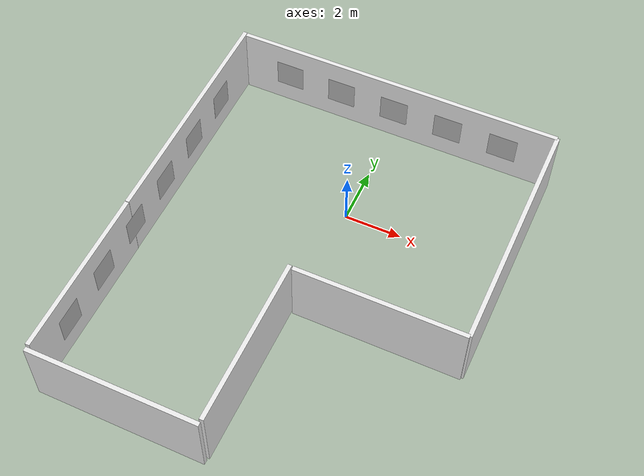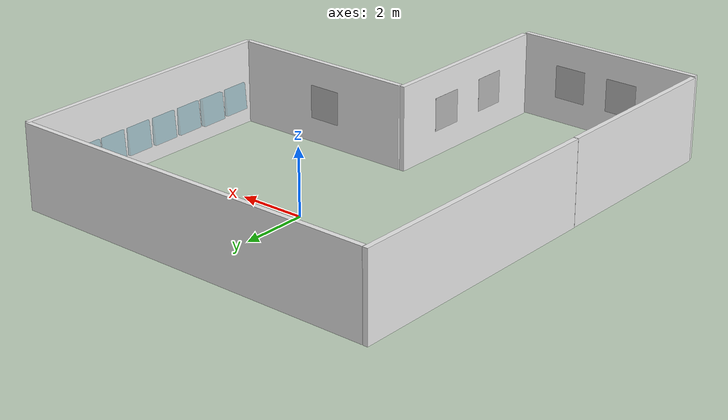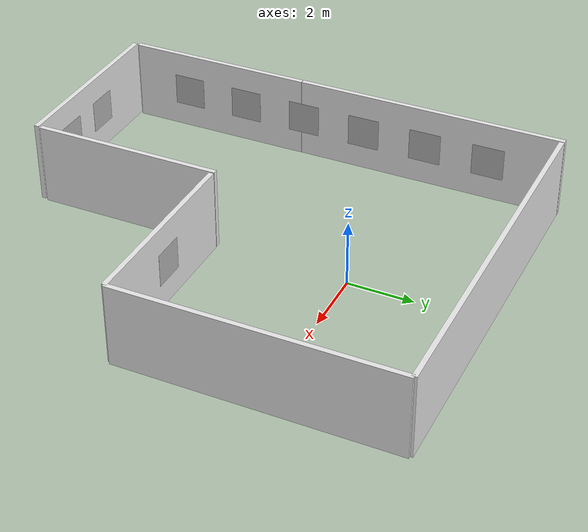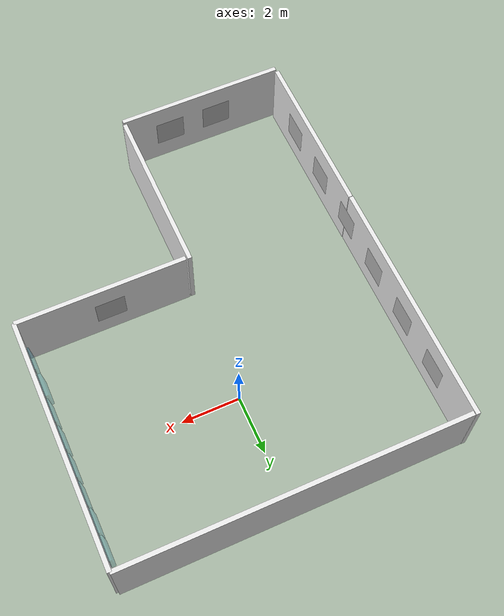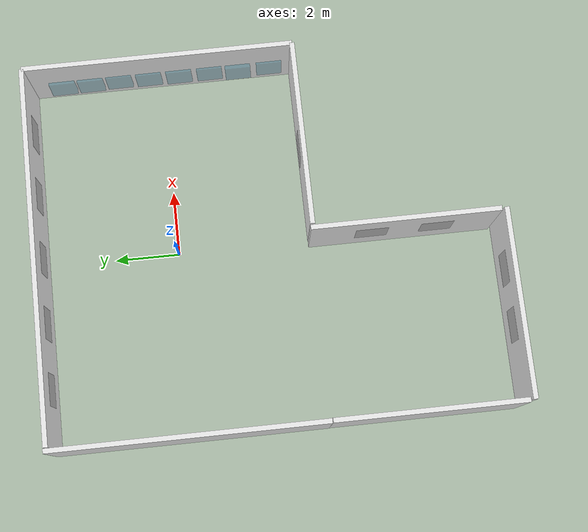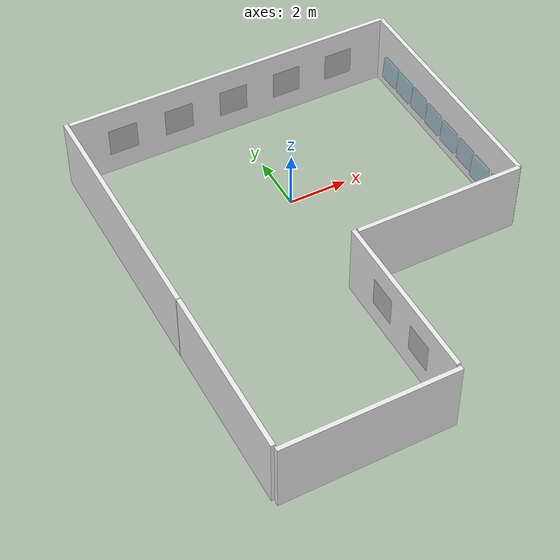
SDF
<sdf version="1.7">
 <world name="default">
  <light name="sun" type="directional">
   <pose>0 0 10 0 -0 0</pose>
   <diffuse>0.8 0.8 0.8 1</diffuse>
   <specular>0.2 0.2 0.2 1</specular>
   <attenuation>
    <range>1000</range>
    <constant>0.9</constant>
    <linear>0.01</linear>
    <quadratic>0.001</quadratic>
   </attenuation>
   <direction>-0.5 0.5 -1</direction>
   <spot><inner_angle>0</inner_angle><outer_angle>0</outer_angle><falloff>0</falloff></spot>
  </light>
  <gravity>0 0 -9.8</gravity>
  <magnetic_field>6e-06 2.3e-05 -4.2e-05</magnetic_field>
  <atmosphere type="adiabatic"/>
  <physics name="default_physics" default="0" type="ode">
   <max_step_size>0.001</max_step_size>
   <real_time_factor>1</real_time_factor>
   <real_time_update_rate>1000</real_time_update_rate>
   <ode>
    <solver>
     <type>quick</type>
     <iters>100</iters>
     <precon_iters>0</precon_iters>
     <sor>1</sor>
     <use_dynamic_moi_rescaling>0</use_dynamic_moi_rescaling>
    </solver>
    <constraints>
     <cfm>0</cfm>
     <erp>0.5</erp>
     <contact_max_correcting_vel>1000</contact_max_correcting_vel>
     <contact_surface_layer>0</contact_surface_layer>
    </constraints>
   </ode>
  </physics>
  <scene><ambient>0.4 0.4 0.4 1</ambient><background>0.7 0.7 0.7 1</background><shadows>0</shadows></scene>
  <spherical_coordinates>
   <surface_model>EARTH_WGS84</surface_model>
   <latitude_deg>0</latitude_deg>
   <longitude_deg>0</longitude_deg>
   <elevation>0</elevation>
   <heading_deg>0</heading_deg>
  </spherical_coordinates>
  <model name="office_env_w2">
   <pose>0 4.162 1.25 0 -0 0</pose>
   <link name="Wall_10">
    <visual name="Wall_10_Visual_0">
     <geometry><box><size>11.466 0.15 2.5</size></box></geometry>
     <material>
      <script>
       <uri>model://office_env_w/materials/scripts</uri>
       <uri>model://office_env_w/materials/textures</uri>
       <name>wall_white</name>
      </script>
     </material>
     <meta><layer>0</layer></meta>
    </visual>
    <collision name="Wall_10_Collision_0"><geometry><box><size>11.466 0.15 2.5</size></box></geometry></collision>
   </link>
   <static>1</static>
  </model>
  <model name="office_env_w">
   <pose>5.733 0 1.25 0 -0 1.57</pose>
   <link name="Wall_10">
    <visual name="Wall_10_Visual_0">
     <geometry><box><size>8.324 0.15 2.5</size></box></geometry>
     <material>
      <script>
       <uri>model://office_env_w/materials/scripts</uri>
       <uri>model://office_env_w/materials/textures</uri>
       <name>wall_white</name>
      </script>
     </material>
     <meta><layer>0</layer></meta>
    </visual>
    <collision name="Wall_10_Collision_0"><geometry><box><size>8.324 0.15 2.5</size></box></geometry></collision>
   </link>
   <static>1</static>
  </model>
  <model name="office_env_w3">
   <pose>2.8655 -4.162 1.25 0 -0 0</pose>
   <link name="Wall_10">
    <visual name="Wall_10_Visual_0">
     <geometry><box><size>5.733 0.15 2.5</size></box></geometry>
     <material>
      <script>
       <uri>model://office_env_w/materials/scripts</uri>
       <uri>model://office_env_w/materials/textures</uri>
       <name>wall_white</name>
      </script>
     </material>
     <meta><layer>0</layer></meta>
    </visual>
    <collision name="Wall_10_Collision_0"><geometry><box><size>5.733 0.15 2.5</size></box></geometry></collision>
   </link>
   <static>1</static>
  </model>
  <model name="office_env_w3_clone">
   <pose>-0.116895 -6.96099 1.25 0 -0 1.57</pose>
   <link name="Wall_10">
    <visual name="Wall_10_Visual_0">
     <geometry><box><size>5.733 0.15 2.5</size></box></geometry>
     <material>
      <script>
       <uri>model://office_env_w/materials/scripts</uri>
       <uri>model://office_env_w/materials/textures</uri>
       <name>wall_white</name>
      </script>
     </material>
     <meta><layer>0</layer></meta>
    </visual>
    <collision name="Wall_10_Collision_0"><geometry><box><size>5.733 0.15 2.5</size></box></geometry></collision>
   </link>
   <static>1</static>
  </model>
  <model name="office_env_w_clone">
   <pose>-5.82948 0.079903 1.25 0 -0 1.57</pose>
   <link name="Wall_10">
    <visual name="Wall_10_Visual_0">
     <geometry><box><size>8.324 0.15 2.5</size></box></geometry>
     <material>
      <script>
       <uri>model://office_env_w/materials/scripts</uri>
       <uri>model://office_env_w/materials/textures</uri>
       <name>wall_white</name>
      </script>
     </material>
     <meta><layer>0</layer></meta>
    </visual>
    <collision name="Wall_10_Collision_0"><geometry><box><size>8.324 0.15 2.5</size></box></geometry></collision>
   </link>
   <static>1</static>
  </model>
  <model name="office_env_w3_clone_clone">
   <pose>-5.82704 -6.96526 1.25 0 -0 1.57</pose>
   <link name="Wall_10">
    <visual name="Wall_10_Visual_0">
     <geometry><box><size>5.733 0.15 2.5</size></box></geometry>
     <material>
      <script>
       <uri>model://office_env_w/materials/scripts</uri>
       <uri>model://office_env_w/materials/textures</uri>
       <name>wall_white</name>
      </script>
     </material>
     <meta><layer>0</layer></meta>
    </visual>
    <collision name="Wall_10_Collision_0"><geometry><box><size>5.733 0.15 2.5</size></box></geometry></collision>
   </link>
   <static>1</static>
  </model>
  <model name="office_env_w3_clone_0">
   <pose>-2.96341 -9.9742 1.25 0 -0 0</pose>
   <link name="Wall_10">
    <visual name="Wall_10_Visual_0">
     <geometry><box><size>5.733 0.15 2.5</size></box></geometry>
     <material>
      <script>
       <uri>model://office_env_w/materials/scripts</uri>
       <uri>model://office_env_w/materials/textures</uri>
       <name>wall_white</name>
      </script>
     </material>
     <meta><layer>0</layer></meta>
    </visual>
    <collision name="Wall_10_Collision_0"><geometry><box><size>5.733 0.15 2.5</size></box></geometry></collision>
   </link>
   <static>1</static>
  </model>
  <model name="window_3">
   <link name="link_2">
    <visual name="visual">
     <pose>0 0 0.9 0 -0 0</pose>
     <geometry><box><size>0.8 0.15 0.8</size></box></geometry>
     <material>
      <lighting>1</lighting>
      <ambient>0.1 0.5 0.6 1</ambient>
      <diffuse>0.1 0.5 0.6 1</diffuse>
      <specular>0.01 0.01 0.01 1</specular>
      <emissive>0 0 0 1</emissive>
     </material>
     <transparency>0.7</transparency>
    </visual>
    <collision name="collision">
     <pose>0 0 0.9 0 -0 0</pose>
     <geometry><box><size>0.8 0.15 0.8</size></box></geometry>
    </collision>
   </link>
   <static>1</static>
   <pose>5.55041 3.13004 -0.000428 0.072676 0.011663 1.57159</pose>
  </model>
  <model name="window_3_clone_clone">
   <link name="link_2">
    <visual name="visual">
     <pose>0 0 0.9 0 -0 0</pose>
     <geometry><box><size>0.8 0.15 0.8</size></box></geometry>
     <material>
      <lighting>1</lighting>
      <ambient>0.1 0.5 0.6 1</ambient>
      <diffuse>0.1 0.5 0.6 1</diffuse>
      <specular>0.01 0.01 0.01 1</specular>
      <emissive>0 0 0 1</emissive>
     </material>
     <transparency>0.7</transparency>
    </visual>
    <collision name="collision">
     <pose>0 0 0.9 0 -0 0</pose>
     <geometry><box><size>0.8 0.15 0.8</size></box></geometry>
    </collision>
   </link>
   <static>1</static>
   <pose>5.57835 0.394375 -0.000428 0.072676 0.011663 1.57159</pose>
  </model>
  <model name="window_3_clone_clone_0">
   <link name="link_2">
    <visual name="visual">
     <pose>0 0 0.9 0 -0 0</pose>
     <geometry><box><size>0.8 0.15 0.8</size></box></geometry>
     <material>
      <lighting>1</lighting>
      <ambient>0.1 0.5 0.6 1</ambient>
      <diffuse>0.1 0.5 0.6 1</diffuse>
      <specular>0.01 0.01 0.01 1</specular>
      <emissive>0 0 0 1</emissive>
     </material>
     <transparency>0.7</transparency>
    </visual>
    <collision name="collision">
     <pose>0 0 0.9 0 -0 0</pose>
     <geometry><box><size>0.8 0.15 0.8</size></box></geometry>
    </collision>
   </link>
   <static>1</static>
   <pose>5.57507 -1.53947 -0.000428 0.072676 0.011663 1.57159</pose>
  </model>
  <model name="window_3_clone_clone_1">
   <link name="link_2">
    <visual name="visual">
     <pose>0 0 0.9 0 -0 0</pose>
     <geometry><box><size>0.8 0.15 0.8</size></box></geometry>
     <material>
      <lighting>1</lighting>
      <ambient>0.1 0.5 0.6 1</ambient>
      <diffuse>0.1 0.5 0.6 1</diffuse>
      <specular>0.01 0.01 0.01 1</specular>
      <emissive>0 0 0 1</emissive>
     </material>
     <transparency>0.7</transparency>
    </visual>
    <collision name="collision">
     <pose>0 0 0.9 0 -0 0</pose>
     <geometry><box><size>0.8 0.15 0.8</size></box></geometry>
    </collision>
   </link>
   <static>1</static>
   <pose>5.57316 -3.44378 -0.000428 0.072676 0.011663 1.57159</pose>
  </model>
  <model name="window_3_clone_clone_2">
   <link name="link_2">
    <visual name="visual">
     <pose>0 0 0.9 0 -0 0</pose>
     <geometry><box><size>0.8 0.15 0.8</size></box></geometry>
     <material>
      <lighting>1</lighting>
      <ambient>0.1 0.5 0.6 1</ambient>
      <diffuse>0.1 0.5 0.6 1</diffuse>
      <specular>0.01 0.01 0.01 1</specular>
      <emissive>0 0 0 1</emissive>
     </material>
     <transparency>0.7</transparency>
    </visual>
    <collision name="collision">
     <pose>0 0 0.9 0 -0 0</pose>
     <geometry><box><size>0.8 0.15 0.8</size></box></geometry>
    </collision>
   </link>
   <static>1</static>
   <pose>5.51026 -2.44936 -0.000428 0.072676 0.011663 1.57159</pose>
  </model>
  <model name="window_3_clone_clone_3">
   <link name="link_2">
    <visual name="visual">
     <pose>0 0 0.9 0 -0 0</pose>
     <geometry><box><size>0.8 0.15 0.8</size></box></geometry>
     <material>
      <lighting>1</lighting>
      <ambient>0.1 0.5 0.6 1</ambient>
      <diffuse>0.1 0.5 0.6 1</diffuse>
      <specular>0.01 0.01 0.01 1</specular>
      <emissive>0 0 0 1</emissive>
     </material>
     <transparency>0.7</transparency>
    </visual>
    <collision name="collision">
     <pose>0 0 0.9 0 -0 0</pose>
     <geometry><box><size>0.8 0.15 0.8</size></box></geometry>
    </collision>
   </link>
   <static>1</static>
   <pose>5.56777 -0.565762 -0.000428 0.072676 0.011663 1.57159</pose>
  </model>
  <model name="window_3_clone_clone_4">
   <link name="link_2">
    <visual name="visual">
     <pose>0 0 0.9 0 -0 0</pose>
     <geometry><box><size>0.8 0.15 0.8</size></box></geometry>
     <material>
      <lighting>1</lighting>
      <ambient>0.1 0.5 0.6 1</ambient>
      <diffuse>0.1 0.5 0.6 1</diffuse>
      <specular>0.01 0.01 0.01 1</specular>
      <emissive>0 0 0 1</emissive>
     </material>
     <transparency>0.7</transparency>
    </visual>
    <collision name="collision">
     <pose>0 0 0.9 0 -0 0</pose>
     <geometry><box><size>0.8 0.15 0.8</size></box></geometry>
    </collision>
   </link>
   <static>1</static>
   <pose>5.59135 1.3384 -0.000428 0.072676 0.011663 1.57159</pose>
  </model>
  <model name="window_3_clone_clone_5">
   <link name="link_2">
    <visual name="visual">
     <pose>0 0 0.9 0 -0 0</pose>
     <geometry><box><size>0.8 0.15 0.8</size></box></geometry>
     <material>
      <lighting>1</lighting>
      <ambient>0.1 0.5 0.6 1</ambient>
      <diffuse>0.1 0.5 0.6 1</diffuse>
      <specular>0.01 0.01 0.01 1</specular>
      <emissive>0 0 0 1</emissive>
     </material>
     <transparency>0.7</transparency>
    </visual>
    <collision name="collision">
     <pose>0 0 0.9 0 -0 0</pose>
     <geometry><box><size>0.8 0.15 0.8</size></box></geometry>
    </collision>
   </link>
   <static>1</static>
   <pose>5.56149 2.2418 -0.000428 0.072676 0.011663 1.57159</pose>
  </model>
  <model name="neobotix_wall_stickers">
   <static>1</static>
   <link name="link">
    <collision name="collision">
     <geometry><plane><normal>0 0 1</normal><size>1 1</size></plane></geometry>
     <surface><friction><ode><mu>1.5</mu><mu2>2.0</mu2></ode></friction></surface>
    </collision>
    <visual name="visual">
     <cast_shadows>0</cast_shadows>
     <geometry><plane><normal>0 0 1</normal><size>1 1</size></plane></geometry>
     <material>
      <script>
       <uri>model://neobotix_wall_stickers/materials/scripts</uri>
       <uri>model://neobotix_wall_stickers/materials/textures/</uri>
       <name>NeobotixWallStickers/Image</name>
      </script>
     </material>
    </visual>
   </link>
   <pose>0 4.07 1.25 1.57 -0 0</pose>
  </model>
  <model name="neobotix_wall_stickers_0">
   <static>1</static>
   <link name="link">
    <collision name="collision">
     <geometry><plane><normal>0 0 1</normal><size>1 1</size></plane></geometry>
     <surface><friction><ode><mu>1.5</mu><mu2>2.0</mu2></ode></friction></surface>
    </collision>
    <visual name="visual">
     <cast_shadows>0</cast_shadows>
     <geometry><plane><normal>0 0 1</normal><size>1 1</size></plane></geometry>
     <material>
      <script>
       <uri>model://neobotix_wall_stickers/materials/scripts</uri>
       <uri>model://neobotix_wall_stickers/materials/textures/</uri>
       <name>NeobotixWallStickers/Image</name>
      </script>
     </material>
    </visual>
   </link>
   <pose>-2 4.07 1.25 1.57 -0 0</pose>
  </model>
  <model name="neobotix_wall_stickers_1">
   <static>1</static>
   <link name="link">
    <collision name="collision">
     <geometry><plane><normal>0 0 1</normal><size>1 1</size></plane></geometry>
     <surface><friction><ode><mu>1.5</mu><mu2>2.0</mu2></ode></friction></surface>
    </collision>
    <visual name="visual">
     <cast_shadows>0</cast_shadows>
     <geometry><plane><normal>0 0 1</normal><size>1 1</size></plane></geometry>
     <material>
      <script>
       <uri>model://neobotix_wall_stickers/materials/scripts</uri>
       <uri>model://neobotix_wall_stickers/materials/textures/</uri>
       <name>NeobotixWallStickers/Image</name>
      </script>
     </material>
    </visual>
   </link>
   <pose>-4 4.07 1.25 1.57 -0 0</pose>
  </model>
  <model name="neobotix_wall_stickers_2">
   <static>1</static>
   <link name="link">
    <collision name="collision">
     <geometry><plane><normal>0 0 1</normal><size>1 1</size></plane></geometry>
     <surface><friction><ode><mu>1.5</mu><mu2>2.0</mu2></ode></friction></surface>
    </collision>
    <visual name="visual">
     <cast_shadows>0</cast_shadows>
     <geometry><plane><normal>0 0 1</normal><size>1 1</size></plane></geometry>
     <material>
      <script>
       <uri>model://neobotix_wall_stickers/materials/scripts</uri>
       <uri>model://neobotix_wall_stickers/materials/textures/</uri>
       <name>NeobotixWallStickers/Image</name>
      </script>
     </material>
    </visual>
   </link>
   <pose>2 4.07 1.25 1.57 -0 0</pose>
  </model>
  <model name="neobotix_wall_stickers_3">
   <static>1</static>
   <link name="link">
    <collision name="collision">
     <geometry><plane><normal>0 0 1</normal><size>1 1</size></plane></geometry>
     <surface><friction><ode><mu>1.5</mu><mu2>2.0</mu2></ode></friction></surface>
    </collision>
    <visual name="visual">
     <cast_shadows>0</cast_shadows>
     <geometry><plane><normal>0 0 1</normal><size>1 1</size></plane></geometry>
     <material>
      <script>
       <uri>model://neobotix_wall_stickers/materials/scripts</uri>
       <uri>model://neobotix_wall_stickers/materials/textures/</uri>
       <name>NeobotixWallStickers/Image</name>
      </script>
     </material>
    </visual>
   </link>
   <pose>4 4.07 1.25 1.57 -0 0</pose>
  </model>
  <model name="neobotix_wall_stickers_4">
   <static>1</static>
   <link name="link">
    <collision name="collision">
     <geometry><plane><normal>0 0 1</normal><size>1 1</size></plane></geometry>
     <surface><friction><ode><mu>1.5</mu><mu2>2.0</mu2></ode></friction></surface>
    </collision>
    <visual name="visual">
     <cast_shadows>0</cast_shadows>
     <geometry><plane><normal>0 0 1</normal><size>1 1</size></plane></geometry>
     <material>
      <script>
       <uri>model://neobotix_wall_stickers/materials/scripts</uri>
       <uri>model://neobotix_wall_stickers/materials/textures/</uri>
       <name>NeobotixWallStickers/Image</name>
      </script>
     </material>
    </visual>
   </link>
   <pose>2.7 -4.07 1.25 1.57159 0.001593 3.14159</pose>
  </model>
  <model name="neobotix_wall_stickers_5">
   <static>1</static>
   <link name="link">
    <collision name="collision">
     <geometry><plane><normal>0 0 1</normal><size>1 1</size></plane></geometry>
     <surface><friction><ode><mu>1.5</mu><mu2>2.0</mu2></ode></friction></surface>
    </collision>
    <visual name="visual">
     <cast_shadows>0</cast_shadows>
     <geometry><plane><normal>0 0 1</normal><size>1 1</size></plane></geometry>
     <material>
      <script>
       <uri>model://neobotix_wall_stickers/materials/scripts</uri>
       <uri>model://neobotix_wall_stickers/materials/textures/</uri>
       <name>NeobotixWallStickers/Image</name>
      </script>
     </material>
    </visual>
   </link>
   <pose>-5.732 0 1.25 1.57 -0 1.57</pose>
  </model>
  <model name="neobotix_wall_stickers_6">
   <static>1</static>
   <link name="link">
    <collision name="collision">
     <geometry><plane><normal>0 0 1</normal><size>1 1</size></plane></geometry>
     <surface><friction><ode><mu>1.5</mu><mu2>2.0</mu2></ode></friction></surface>
    </collision>
    <visual name="visual">
     <cast_shadows>0</cast_shadows>
     <geometry><plane><normal>0 0 1</normal><size>1 1</size></plane></geometry>
     <material>
      <script>
       <uri>model://neobotix_wall_stickers/materials/scripts</uri>
       <uri>model://neobotix_wall_stickers/materials/textures/</uri>
       <name>NeobotixWallStickers/Image</name>
      </script>
     </material>
    </visual>
   </link>
   <pose>-5.732 -2 1.25 1.57 -0 1.57</pose>
  </model>
  <model name="neobotix_wall_stickers_7">
   <static>1</static>
   <link name="link">
    <collision name="collision">
     <geometry><plane><normal>0 0 1</normal><size>1 1</size></plane></geometry>
     <surface><friction><ode><mu>1.5</mu><mu2>2.0</mu2></ode></friction></surface>
    </collision>
    <visual name="visual">
     <cast_shadows>0</cast_shadows>
     <geometry><plane><normal>0 0 1</normal><size>1 1</size></plane></geometry>
     <material>
      <script>
       <uri>model://neobotix_wall_stickers/materials/scripts</uri>
       <uri>model://neobotix_wall_stickers/materials/textures/</uri>
       <name>NeobotixWallStickers/Image</name>
      </script>
     </material>
    </visual>
   </link>
   <pose>-5.732 2 1.25 1.57 -0 1.57</pose>
  </model>
  <model name="neobotix_wall_stickers_8">
   <static>1</static>
   <link name="link">
    <collision name="collision">
     <geometry><plane><normal>0 0 1</normal><size>1 1</size></plane></geometry>
     <surface><friction><ode><mu>1.5</mu><mu2>2.0</mu2></ode></friction></surface>
    </collision>
    <visual name="visual">
     <cast_shadows>0</cast_shadows>
     <geometry><plane><normal>0 0 1</normal><size>1 1</size></plane></geometry>
     <material>
      <script>
       <uri>model://neobotix_wall_stickers/materials/scripts</uri>
       <uri>model://neobotix_wall_stickers/materials/textures/</uri>
       <name>NeobotixWallStickers/Image</name>
      </script>
     </material>
    </visual>
   </link>
   <pose>-5.732 -4 1.25 1.57 -0 1.57</pose>
  </model>
  <model name="neobotix_wall_stickers_9">
   <static>1</static>
   <link name="link">
    <collision name="collision">
     <geometry><plane><normal>0 0 1</normal><size>1 1</size></plane></geometry>
     <surface><friction><ode><mu>1.5</mu><mu2>2.0</mu2></ode></friction></surface>
    </collision>
    <visual name="visual">
     <cast_shadows>0</cast_shadows>
     <geometry><plane><normal>0 0 1</normal><size>1 1</size></plane></geometry>
     <material>
      <script>
       <uri>model://neobotix_wall_stickers/materials/scripts</uri>
       <uri>model://neobotix_wall_stickers/materials/textures/</uri>
       <name>NeobotixWallStickers/Image</name>
      </script>
     </material>
    </visual>
   </link>
   <pose>-5.732 -6 1.25 1.57 -0 1.57</pose>
  </model>
  <model name="neobotix_wall_stickers_10">
   <static>1</static>
   <link name="link">
    <collision name="collision">
     <geometry><plane><normal>0 0 1</normal><size>1 1</size></plane></geometry>
     <surface><friction><ode><mu>1.5</mu><mu2>2.0</mu2></ode></friction></surface>
    </collision>
    <visual name="visual">
     <cast_shadows>0</cast_shadows>
     <geometry><plane><normal>0 0 1</normal><size>1 1</size></plane></geometry>
     <material>
      <script>
       <uri>model://neobotix_wall_stickers/materials/scripts</uri>
       <uri>model://neobotix_wall_stickers/materials/textures/</uri>
       <name>NeobotixWallStickers/Image</name>
      </script>
     </material>
    </visual>
   </link>
   <pose>-5.732 -8 1.25 1.57 -0 1.57</pose>
  </model>
  <model name="neobotix_wall_stickers_11">
   <static>1</static>
   <link name="link">
    <collision name="collision">
     <geometry><plane><normal>0 0 1</normal><size>1 1</size></plane></geometry>
     <surface><friction><ode><mu>1.5</mu><mu2>2.0</mu2></ode></friction></surface>
    </collision>
    <visual name="visual">
     <cast_shadows>0</cast_shadows>
     <geometry><plane><normal>0 0 1</normal><size>1 1</size></plane></geometry>
     <material>
      <script>
       <uri>model://neobotix_wall_stickers/materials/scripts</uri>
       <uri>model://neobotix_wall_stickers/materials/textures/</uri>
       <name>NeobotixWallStickers/Image</name>
      </script>
     </material>
    </visual>
   </link>
   <pose>-0.2 -8 1.25 1.57159 0.001593 -1.57159</pose>
  </model>
  <model name="neobotix_wall_stickers_12">
   <static>1</static>
   <link name="link">
    <collision name="collision">
     <geometry><plane><normal>0 0 1</normal><size>1 1</size></plane></geometry>
     <surface><friction><ode><mu>1.5</mu><mu2>2.0</mu2></ode></friction></surface>
    </collision>
    <visual name="visual">
     <cast_shadows>0</cast_shadows>
     <geometry><plane><normal>0 0 1</normal><size>1 1</size></plane></geometry>
     <material>
      <script>
       <uri>model://neobotix_wall_stickers/materials/scripts</uri>
       <uri>model://neobotix_wall_stickers/materials/textures/</uri>
       <name>NeobotixWallStickers/Image</name>
      </script>
     </material>
    </visual>
   </link>
   <pose>-0.2 -6 1.25 1.57159 0.001593 -1.57159</pose>
  </model>
  <model name="neobotix_wall_stickers_13">
   <static>1</static>
   <link name="link">
    <collision name="collision">
     <geometry><plane><normal>0 0 1</normal><size>1 1</size></plane></geometry>
     <surface><friction><ode><mu>1.5</mu><mu2>2.0</mu2></ode></friction></surface>
    </collision>
    <visual name="visual">
     <cast_shadows>0</cast_shadows>
     <geometry><plane><normal>0 0 1</normal><size>1 1</size></plane></geometry>
     <material>
      <script>
       <uri>model://neobotix_wall_stickers/materials/scripts</uri>
       <uri>model://neobotix_wall_stickers/materials/textures/</uri>
       <name>NeobotixWallStickers/Image</name>
      </script>
     </material>
    </visual>
   </link>
   <pose>-1.7445 -9.89 1.25 1.57159 0.001593 3.14159</pose>
  </model>
  <model name="neobotix_wall_stickers_14">
   <static>1</static>
   <link name="link">
    <collision name="collision">
     <geometry><plane><normal>0 0 1</normal><size>1 1</size></plane></geometry>
     <surface><friction><ode><mu>1.5</mu><mu2>2.0</mu2></ode></friction></surface>
    </collision>
    <visual name="visual">
     <cast_shadows>0</cast_shadows>
     <geometry><plane><normal>0 0 1</normal><size>1 1</size></plane></geometry>
     <material>
      <script>
       <uri>model://neobotix_wall_stickers/materials/scripts</uri>
       <uri>model://neobotix_wall_stickers/materials/textures/</uri>
       <name>NeobotixWallStickers/Image</name>
      </script>
     </material>
    </visual>
   </link>
   <pose>-3.489 -9.89 1.25 1.57 -0 -3.14</pose>
  </model>
  <light name="user_point_light_0" type="point">
   <pose>3.54976 1.43038 1 0 -0 0</pose>
   <diffuse>0.5 0.5 0.5 1</diffuse>
   <specular>0.1 0.1 0.1 1</specular>
   <attenuation>
    <range>20</range>
    <constant>0.5</constant>
    <linear>0.01</linear>
    <quadratic>0.001</quadratic>
   </attenuation>
   <cast_shadows>0</cast_shadows>
   <direction>0 0 -1</direction>
   <spot><inner_angle>0</inner_angle><outer_angle>0</outer_angle><falloff>0</falloff></spot>
  </light>
  <light name="user_point_light_0_clone" type="point">
   <pose>-8.02842 6.22549 7.18798 0 -0 0</pose>
   <diffuse>0.5 0.5 0.5 1</diffuse>
   <specular>0.1 0.1 0.1 1</specular>
   <direction>0 0 -1</direction>
   <attenuation>
    <range>20</range>
    <constant>0.5</constant>
    <linear>0.01</linear>
    <quadratic>0.001</quadratic>
   </attenuation>
   <cast_shadows>0</cast_shadows>
   <spot><inner_angle>0</inner_angle><outer_angle>0</outer_angle><falloff>0</falloff></spot>
  </light>
  <audio><device>default</device></audio>
  <model name="neobotix_ground_plane">
   <static>1</static>
   <link name="link">
    <collision name="collision">
     <geometry><plane><normal>0 0 1</normal><size>100 100</size></plane></geometry>
     <surface><friction><ode><mu>1.5</mu><mu2>2.0</mu2></ode></friction></surface>
    </collision>
   </link>
   <pose>15.6163 -0.783534 0 0 -0 0</pose>
  </model>
 </world>
</sdf>
